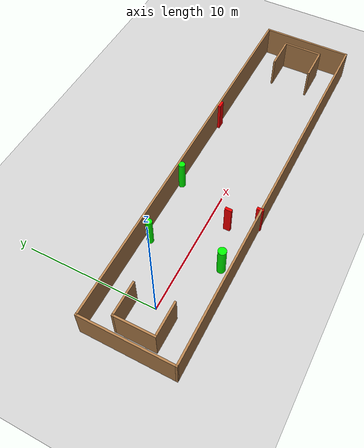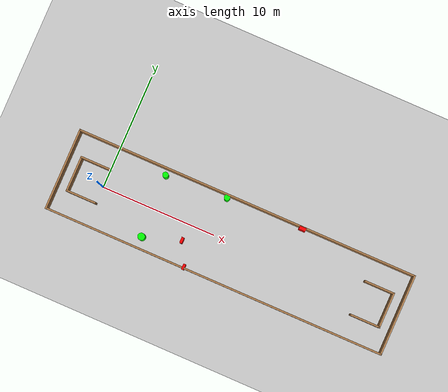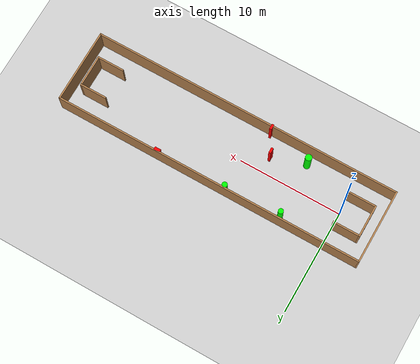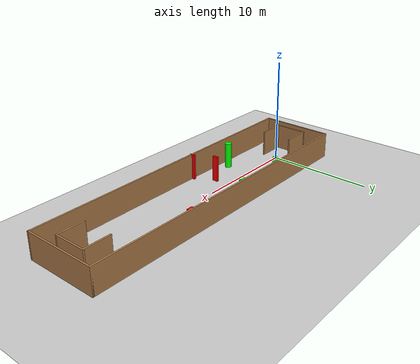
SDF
<sdf version="1.7">
 <world name="default">
  <light name="sun" type="directional">
   <pose>0 0 10 0 -0 0</pose>
   <diffuse>0.8 0.8 0.8 1</diffuse>
   <specular>0.2 0.2 0.2 1</specular>
   <attenuation>
    <range>1000</range>
    <constant>0.9</constant>
    <linear>0.01</linear>
    <quadratic>0.001</quadratic>
   </attenuation>
   <direction>-0.5 0.1 -0.9</direction>
   <spot><inner_angle>0</inner_angle><outer_angle>0</outer_angle><falloff>0</falloff></spot>
  </light>
  <model name="ground_plane">
   <static>1</static>
   <link name="link">
    <collision name="collision">
     <geometry><plane><normal>0 0 1</normal><size>100 100</size></plane></geometry>
     <surface>
      <contact><collide_bitmask>65535</collide_bitmask></contact>
      <friction><ode><mu>100</mu><mu2>50</mu2></ode></friction>
     </surface>
    </collision>
    <visual name="visual">
     <cast_shadows>0</cast_shadows>
     <geometry><plane><normal>0 0 1</normal><size>100 100</size></plane></geometry>
     <material>
      <script><uri>file://media/materials/scripts/gazebo.material</uri><name>Gazebo/Grey</name></script>
     </material>
    </visual>
   </link>
  </model>
  <gravity>0 0 -9.8</gravity>
  <magnetic_field>6e-06 2.3e-05 -4.2e-05</magnetic_field>
  <atmosphere type="adiabatic"/>
  <physics type="ode">
   <max_step_size>0.001</max_step_size>
   <real_time_factor>1</real_time_factor>
   <real_time_update_rate>1000</real_time_update_rate>
  </physics>
  <scene><ambient>0.4 0.4 0.4 1</ambient><background>0.7 0.7 0.7 1</background><shadows>1</shadows></scene>
  <spherical_coordinates>
   <surface_model>EARTH_WGS84</surface_model>
   <latitude_deg>0</latitude_deg>
   <longitude_deg>0</longitude_deg>
   <elevation>0</elevation>
   <heading_deg>0</heading_deg>
  </spherical_coordinates>
  <model name="my_base_walls">
   <link name="Wall_0">
    <collision name="Wall_0_Collision">
     <geometry><box><size>7.15 0.15 2.5</size></box></geometry>
     <pose>0 0 1.25 0 -0 0</pose>
    </collision>
    <visual name="Wall_0_Visual">
     <pose>0 0 1.25 0 -0 0</pose>
     <geometry><box><size>7.15 0.15 2.5</size></box></geometry>
     <material>
      <script><uri>file://media/materials/scripts/gazebo.material</uri><name>Gazebo/Wood</name></script>
      <ambient>1 1 1 1</ambient>
     </material>
     <meta><layer>0</layer></meta>
    </visual>
    <pose>-15 0 0 0 -0 1.5708</pose>
   </link>
   <link name="Wall_10">
    <collision name="Wall_10_Collision">
     <geometry><box><size>2.65 0.15 2.5</size></box></geometry>
     <pose>0 0 1.25 0 -0 0</pose>
    </collision>
    <visual name="Wall_10_Visual">
     <pose>0 0 1.25 0 -0 0</pose>
     <geometry><box><size>2.65 0.15 2.5</size></box></geometry>
     <material>
      <script><uri>file://media/materials/scripts/gazebo.material</uri><name>Gazebo/Wood</name></script>
      <ambient>1 1 1 1</ambient>
     </material>
     <meta><layer>0</layer></meta>
    </visual>
    <pose>-12.75 -1.5 0 0 -0 0</pose>
   </link>
   <link name="Wall_12">
    <collision name="Wall_12_Collision">
     <geometry><box><size>2.65 0.15 2.5</size></box></geometry>
     <pose>0 0 1.25 0 -0 0</pose>
    </collision>
    <visual name="Wall_12_Visual">
     <pose>0 0 1.25 0 -0 0</pose>
     <geometry><box><size>2.65 0.15 2.5</size></box></geometry>
     <material>
      <script><uri>file://media/materials/scripts/gazebo.material</uri><name>Gazebo/Wood</name></script>
      <ambient>1 1 1 1</ambient>
     </material>
     <meta><layer>0</layer></meta>
    </visual>
    <pose>-12.75 1.5 0 0 -0 0</pose>
   </link>
   <link name="Wall_14">
    <collision name="Wall_14_Collision">
     <geometry><box><size>3.15 0.15 2.5</size></box></geometry>
     <pose>0 0 1.25 0 -0 0</pose>
    </collision>
    <visual name="Wall_14_Visual">
     <pose>0 0 1.25 0 -0 0</pose>
     <geometry><box><size>3.15 0.15 2.5</size></box></geometry>
     <material>
      <script><uri>file://media/materials/scripts/gazebo.material</uri><name>Gazebo/Wood</name></script>
      <ambient>1 1 1 1</ambient>
     </material>
     <meta><layer>0</layer></meta>
    </visual>
    <pose>14 0 0 0 -0 -1.5708</pose>
   </link>
   <link name="Wall_15">
    <collision name="Wall_15_Collision">
     <geometry><box><size>2.65 0.15 2.5</size></box></geometry>
     <pose>0 0 1.25 0 -0 0</pose>
    </collision>
    <visual name="Wall_15_Visual">
     <pose>0 0 1.25 0 -0 0</pose>
     <geometry><box><size>2.65 0.15 2.5</size></box></geometry>
     <material>
      <script><uri>file://media/materials/scripts/gazebo.material</uri><name>Gazebo/Wood</name></script>
      <ambient>1 1 1 1</ambient>
     </material>
     <meta><layer>0</layer></meta>
    </visual>
    <pose>12.75 -1.5 0 0 -0 3.14159</pose>
   </link>
   <link name="Wall_17">
    <collision name="Wall_17_Collision">
     <geometry><box><size>2.65 0.15 2.5</size></box></geometry>
     <pose>0 0 1.25 0 -0 0</pose>
    </collision>
    <visual name="Wall_17_Visual">
     <pose>0 0 1.25 0 -0 0</pose>
     <geometry><box><size>2.65 0.15 2.5</size></box></geometry>
     <material>
      <script><uri>file://media/materials/scripts/gazebo.material</uri><name>Gazebo/Wood</name></script>
      <ambient>1 1 1 1</ambient>
     </material>
     <meta><layer>0</layer></meta>
    </visual>
    <pose>12.75 1.5 0 0 -0 3.14159</pose>
   </link>
   <link name="Wall_2">
    <collision name="Wall_2_Collision">
     <geometry><box><size>30.15 0.15 2.5</size></box></geometry>
     <pose>0 0 1.25 0 -0 0</pose>
    </collision>
    <visual name="Wall_2_Visual">
     <pose>0 0 1.25 0 -0 0</pose>
     <geometry><box><size>30.15 0.15 2.5</size></box></geometry>
     <material>
      <script><uri>file://media/materials/scripts/gazebo.material</uri><name>Gazebo/Wood</name></script>
      <ambient>1 1 1 1</ambient>
     </material>
     <meta><layer>0</layer></meta>
    </visual>
    <pose>-0 -3.5 0 0 -0 0</pose>
   </link>
   <link name="Wall_4">
    <collision name="Wall_4_Collision">
     <geometry><box><size>30.15 0.15 2.5</size></box></geometry>
     <pose>0 0 1.25 0 -0 0</pose>
    </collision>
    <visual name="Wall_4_Visual">
     <pose>0 0 1.25 0 -0 0</pose>
     <geometry><box><size>30.15 0.15 2.5</size></box></geometry>
     <material>
      <script><uri>file://media/materials/scripts/gazebo.material</uri><name>Gazebo/Wood</name></script>
      <ambient>1 1 1 1</ambient>
     </material>
     <meta><layer>0</layer></meta>
    </visual>
    <pose>-0 3.5 0 0 -0 0</pose>
   </link>
   <link name="Wall_6">
    <collision name="Wall_6_Collision">
     <geometry><box><size>7.15 0.15 2.5</size></box></geometry>
     <pose>0 0 1.25 0 -0 0</pose>
    </collision>
    <visual name="Wall_6_Visual">
     <pose>0 0 1.25 0 -0 0</pose>
     <geometry><box><size>7.15 0.15 2.5</size></box></geometry>
     <material>
      <script><uri>file://media/materials/scripts/gazebo.material</uri><name>Gazebo/Wood</name></script>
      <ambient>1 1 1 1</ambient>
     </material>
     <meta><layer>0</layer></meta>
    </visual>
    <pose>15 0 0 0 -0 -1.5708</pose>
   </link>
   <link name="Wall_9">
    <collision name="Wall_9_Collision">
     <geometry><box><size>3.15 0.15 2.5</size></box></geometry>
     <pose>0 0 1.25 0 -0 0</pose>
    </collision>
    <visual name="Wall_9_Visual">
     <pose>0 0 1.25 0 -0 0</pose>
     <geometry><box><size>3.15 0.15 2.5</size></box></geometry>
     <material>
      <script><uri>file://media/materials/scripts/gazebo.material</uri><name>Gazebo/Wood</name></script>
      <ambient>1 1 1 1</ambient>
     </material>
     <meta><layer>0</layer></meta>
    </visual>
    <pose>-14 0 0 0 -0 -1.5708</pose>
   </link>
   <static>1</static>
   <pose>11.5 0 0 0 -0 0</pose>
  </model>
  <model name="cylinder1">
   <static>1</static>
   <link name="link">
    <inertial>
     <mass>1</mass>
     <inertia><ixx>0.5</ixx><ixy>0</ixy><ixz>0</ixz><iyy>0.5</iyy><iyz>0</iyz><izz>1</izz></inertia>
    </inertial>
    <collision name="collision">
     <geometry><cylinder><radius>0.24963326704232996</radius><length>2.5</length></cylinder></geometry>
    </collision>
    <visual name="visual">
     <geometry><cylinder><radius>0.24963326704232996</radius><length>2.5</length></cylinder></geometry>
     <material>
      <ambient>0 1 0 1</ambient>
      <diffuse>0 1 0 1</diffuse>
      <specular>0.1 0.1 0.1 1</specular>
      <emissive>0 0 0 0</emissive>
     </material>
    </visual>
   </link>
   <pose>4.411795068419778 2.9201145022442825 1.25 0 0 0</pose>
  </model>
  <model name="cylinder2">
   <static>1</static>
   <link name="link">
    <inertial>
     <mass>1</mass>
     <inertia><ixx>0.5</ixx><ixy>0</ixy><ixz>0</ixz><iyy>0.5</iyy><iyz>0</iyz><izz>1</izz></inertia>
    </inertial>
    <collision name="collision">
     <geometry><cylinder><radius>0.2521982882664743</radius><length>2.5</length></cylinder></geometry>
    </collision>
    <visual name="visual">
     <geometry><cylinder><radius>0.2521982882664743</radius><length>2.5</length></cylinder></geometry>
     <material>
      <ambient>0 1 0 1</ambient>
      <diffuse>0 1 0 1</diffuse>
      <specular>0.1 0.1 0.1 1</specular>
      <emissive>0 0 0 0</emissive>
     </material>
    </visual>
   </link>
   <pose>9.801990336816848 3.2381940333976527 1.25 0 0 0</pose>
  </model>
  <model name="cylinder3">
   <static>1</static>
   <link name="link">
    <inertial>
     <mass>1</mass>
     <inertia><ixx>0.5</ixx><ixy>0</ixy><ixz>0</ixz><iyy>0.5</iyy><iyz>0</iyz><izz>1</izz></inertia>
    </inertial>
    <collision name="collision">
     <geometry><cylinder><radius>0.3106494698565554</radius><length>2.5</length></cylinder></geometry>
    </collision>
    <visual name="visual">
     <geometry><cylinder><radius>0.3106494698565554</radius><length>2.5</length></cylinder></geometry>
     <material>
      <ambient>0 1 0 1</ambient>
      <diffuse>0 1 0 1</diffuse>
      <specular>0.1 0.1 0.1 1</specular>
      <emissive>0 0 0 0</emissive>
     </material>
    </visual>
   </link>
   <pose>4.6285795444308775 -2.516974948566734 1.25 0 0 0</pose>
  </model>
  <model name="box1">
   <static>1</static>
   <link name="link">
    <inertial>
     <mass>1</mass>
     <inertia><ixx>0.083</ixx><ixy>0</ixy><ixz>0</ixz><iyy>0.083</iyy><iyz>0</iyz><izz>0.083</izz></inertia>
    </inertial>
    <collision name="collision">
     <geometry><box><size>0.5813743231669553 0.2952073755303475 2.5</size></box></geometry>
    </collision>
    <visual name="visual">
     <geometry><box><size>0.5813743231669553 0.2952073755303475 2.5</size></box></geometry>
     <material>
      <ambient>1 0 0 1</ambient>
      <diffuse>1 0 0 1</diffuse>
      <specular>0.1 0.1 0.1 1</specular>
      <emissive>0 0 0 0</emissive>
     </material>
    </visual>
    <sensor name="my_contact" type="contact">
     <contact><collision>box_collision</collision><topic>__default_topic__</topic></contact>
    </sensor>
   </link>
   <pose>16.512531987809606 3.3843793144069547 1.25 0 0 0</pose>
  </model>
  <model name="box2">
   <static>1</static>
   <link name="link">
    <inertial>
     <mass>1</mass>
     <inertia><ixx>0.083</ixx><ixy>0</ixy><ixz>0</ixz><iyy>0.083</iyy><iyz>0</iyz><izz>0.083</izz></inertia>
    </inertial>
    <collision name="collision">
     <geometry><box><size>0.21475095394343813 0.4975963370664567 2.5</size></box></geometry>
    </collision>
    <visual name="visual">
     <geometry><box><size>0.21475095394343813 0.4975963370664567 2.5</size></box></geometry>
     <material>
      <ambient>1 0 0 1</ambient>
      <diffuse>1 0 0 1</diffuse>
      <specular>0.1 0.1 0.1 1</specular>
      <emissive>0 0 0 0</emissive>
     </material>
    </visual>
    <sensor name="my_contact" type="contact">
     <contact><collision>box_collision</collision><topic>__default_topic__</topic></contact>
    </sensor>
   </link>
   <pose>8.806633085166874 -3.4059710441993167 1.25 0 0 0</pose>
  </model>
  <model name="box3">
   <static>1</static>
   <link name="link">
    <inertial>
     <mass>1</mass>
     <inertia><ixx>0.083</ixx><ixy>0</ixy><ixz>0</ixz><iyy>0.083</iyy><iyz>0</iyz><izz>0.083</izz></inertia>
    </inertial>
    <collision name="collision">
     <geometry><box><size>0.21669985090693458 0.5223264111981716 2.5</size></box></geometry>
    </collision>
    <visual name="visual">
     <geometry><box><size>0.21669985090693458 0.5223264111981716 2.5</size></box></geometry>
     <material>
      <ambient>1 0 0 1</ambient>
      <diffuse>1 0 0 1</diffuse>
      <specular>0.1 0.1 0.1 1</specular>
      <emissive>0 0 0 0</emissive>
     </material>
    </visual>
    <sensor name="my_contact" type="contact">
     <contact><collision>box_collision</collision><topic>__default_topic__</topic></contact>
    </sensor>
   </link>
   <pose>7.801947469201119 -1.4638288172745897 1.25 0 0 0</pose>
  </model>
 </world>
</sdf>
